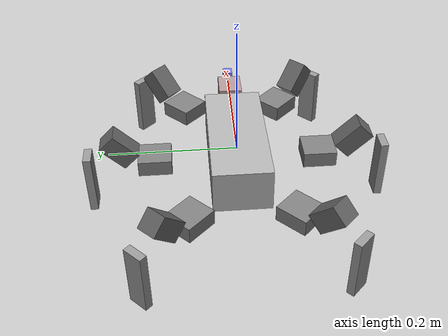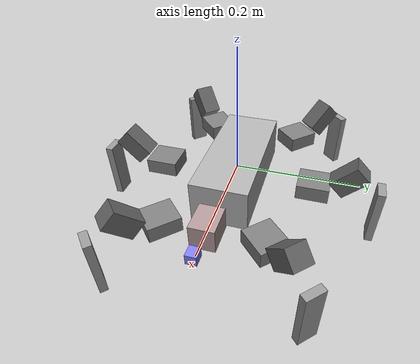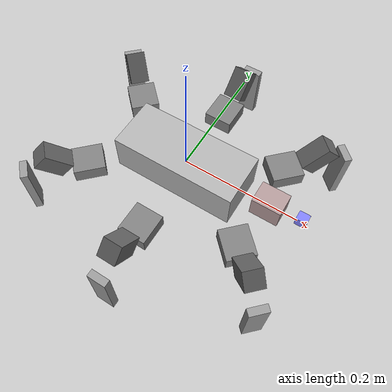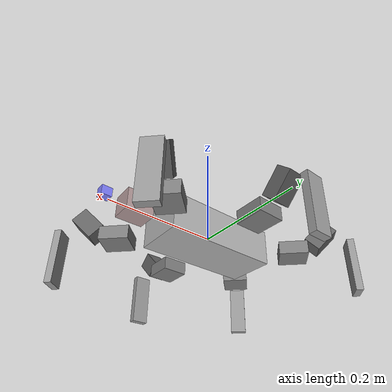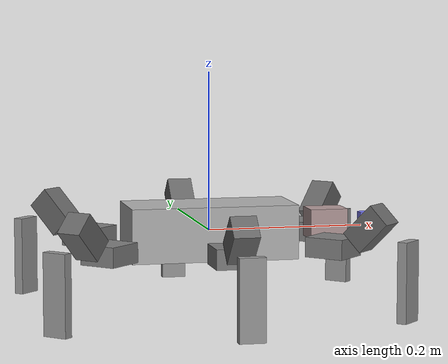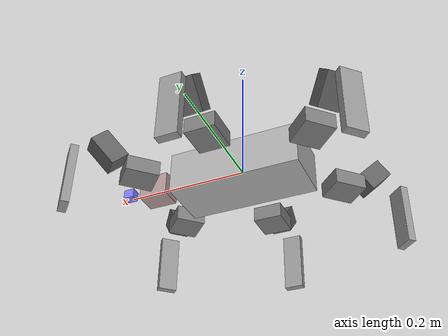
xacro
<?xml version="1.0"?>
<robot xmlns:xacro="http://www.ros.org/wiki/xacro" name="jade">
  <xacro:property name="pi" value="3.1415926" />

  <xacro:macro name="default_inertial" params="mass">
    <inertial>
      <mass value="${mass}" />
      <inertia ixx="1.0" ixy="0.0" ixz="0.0"
	       iyy="1.0" iyz="0.0"
	       izz="1.0" />
    </inertial>
  </xacro:macro>

  <!-- The main body frame of the robot -->
  <link name="base_link">
    <visual>
      <geometry>
	<box size="0.212 0.090 0.0685"/>
      </geometry>
      <material name="gray7">
	<color rgba="0.7 0.7 0.7 1"/>
      </material>
    </visual>
    <collision>
      <geometry>
	<box size="0.212 0.090 0.0685"/>
      </geometry>
    </collision>
    <xacro:default_inertial mass="0.010"/>
  </link>

  <!-- Definition of the TIBIA part -->
  <xacro:macro name="tibia" params="id">
    <link name="tibia_${id}">
      <visual>
	<origin xyz="0.070 0 0.0225"/>
	<geometry>
	  <box size="0.1 0.032 0.0125"/>
	</geometry>
	<material name="gray2">
	  <color rgba="0.6 0.6 0.6 1"/>
	</material>
      </visual>
      <collision>
	<origin xyz="0.070 0 0.0225"/>
	<geometry>
	  <box size="0.1 0.032 0.0125"/>
	</geometry>
      </collision>
      <xacro:default_inertial mass="0.010"/>
    </link>
    <joint name="tibia_${id}_joint" type="revolute">
      <origin xyz="0.0644 0 -0.0146" rpy="0 ${3*pi/4} 0"/>
      <axis xyz="0 1 0"/>
      <parent link="femur_${id}"/>
      <child link="tibia_${id}"/>
      <limit effort="300" velocity="0.1" lower="-2.6" upper="2.6"/>
    </joint>
  </xacro:macro>

  <!-- Definition of the FEMUR part -->
  <xacro:macro name="femur" params="id">
    <link name="femur_${id}">
      <visual>
	<origin xyz="0.0384 0 0"/>
	<geometry>
	  <box size="0.052 0.032 0.032"/>
	</geometry>
	<material name="gray4">
	  <color rgba="0.4 0.4 0.4 1"/>
	</material>
      </visual>
      <collision>
	<origin xyz="0.0384 0 0"/>
	<geometry>
	  <box size="0.052 0.032 0.032"/>
	</geometry>
      </collision>
      <xacro:default_inertial mass="0.010"/>
    </link>
    <joint name="femur_${id}_joint" type="revolute">
      <origin xyz="0.052 0 0" rpy="0 ${-pi/4} 0"/>
      <axis xyz="0 1 0"/>
      <parent link="coxa_${id}"/>
      <child link="femur_${id}"/>
      <limit effort="300" velocity="0.1" lower="-2.6" upper="2.6"/>
    </joint>
    <xacro:tibia id="${id}"/>
  </xacro:macro>

  <!-- Definition of the COXA part -->
  <xacro:macro name="coxa" params="id pos rot">
    <link name="coxa_${id}">
      <visual>
	<origin xyz="0.026 0 0"/>
	<geometry>
	  <box size="0.052 0.048 0.025"/>
	</geometry>
	<material name="gray5">
	  <color rgba="0.5 0.5 0.5 1"/>
	</material>
      </visual>
      <collision>
	<origin xyz="0.026 0 0"/>
	<geometry>
	  <box size="0.052 0.048 0.025"/>
	</geometry>
      </collision>
      <xacro:default_inertial mass="0.010"/>
    </link>
    <joint name="coxa_${id}_joint" type="revolute">
      <origin xyz="${pos}" rpy="0 0 ${rot}"/>
      <axis xyz="0 0 1"/>
      <parent link="base_link"/>
      <child link="coxa_${id}"/>
      <limit effort="300" velocity="0.1" lower="-2.6" upper="2.6"/>
    </joint>
    <xacro:femur id="${id}"/>
  </xacro:macro>

  <!-- Definition of the HEAD -->
  <link name="head_pivot">
    <visual>
      <origin xyz="0.00125 0 0"/>
      <geometry>
	<box size="0.048 0.038 0.038"/>
      </geometry>
      <material name="red6">
	<color rgba="0.7 0.6 0.6 1"/>
      </material>
    </visual>
    <collision>
      <origin xyz="0.00125 0 0"/>
      <geometry>
	<box size="0.048 0.038 0.038"/>
      </geometry>
    </collision>
    <xacro:default_inertial mass="0.010"/>
  </link>

  <joint name="head_pivot_joint" type="revolute">
    <origin xyz="${0.106+0.0455} 0 0.00525" rpy="0 0 0.0"/>
    <axis xyz="0 0 1"/>
    <parent link="base_link"/>
    <child link="head_pivot"/>
    <limit effort="300" velocity="0.1" lower="-2.6" upper="2.6"/>
  </joint>

  <link name="camera_head">
    <visual>
      <origin xyz="0.042 0 0"/>
      <geometry>
	<box size="0.018 0.016 0.016"/>
      </geometry>
      <material name="blue1">
	<color rgba="0.5 0.5 0.99 1"/>
      </material>
    </visual>
    <collision>
      <origin xyz="0.042 0 0"/>
      <geometry>
	<box size="0.018 0.016 0.016"/>
      </geometry>
    </collision>
    <xacro:default_inertial mass="0.010"/>
  </link>

  <joint name="head_tilt_joint" type="revolute">
    <origin xyz="0.0133 0 0.004" rpy="0 0 0"/>
    <axis xyz="0 1 0"/>
    <parent link="head_pivot"/>
    <child link="camera_head"/>
    <limit effort="300" velocity="0.1" lower="-2.6" upper="2.6"/>
  </joint>

  <xacro:coxa id="1" pos="0.122 0.061 -0.01375" rot="${3.14159/4}" />
  <xacro:coxa id="1R" pos="0.122 -0.061 -0.01375" rot="${-3.14159/4}" />
  <xacro:coxa id="2" pos="0.0 0.1035 -0.01375" rot="${3.14159/2}" />
  <xacro:coxa id="2R" pos="0.0 -0.1035 -0.01375" rot="${-3.14159/2}" />
  <xacro:coxa id="3" pos="-0.122 0.061 -0.01375" rot="2.3562" />
  <xacro:coxa id="3R" pos="-0.122 -0.061 -0.01375" rot="-2.3562" />

</robot>
